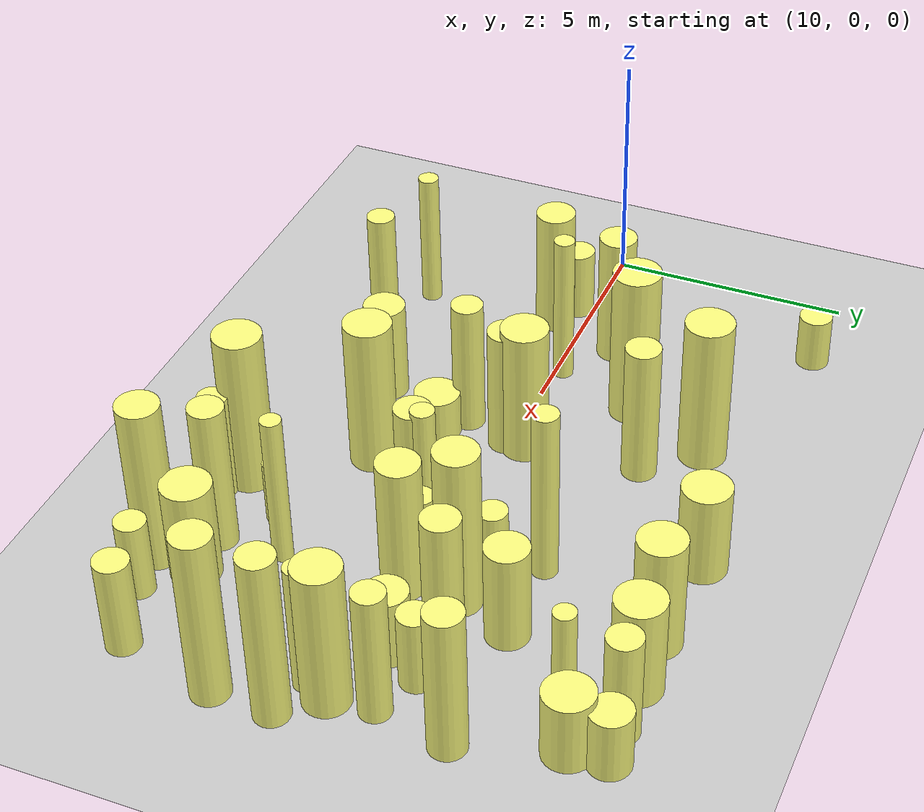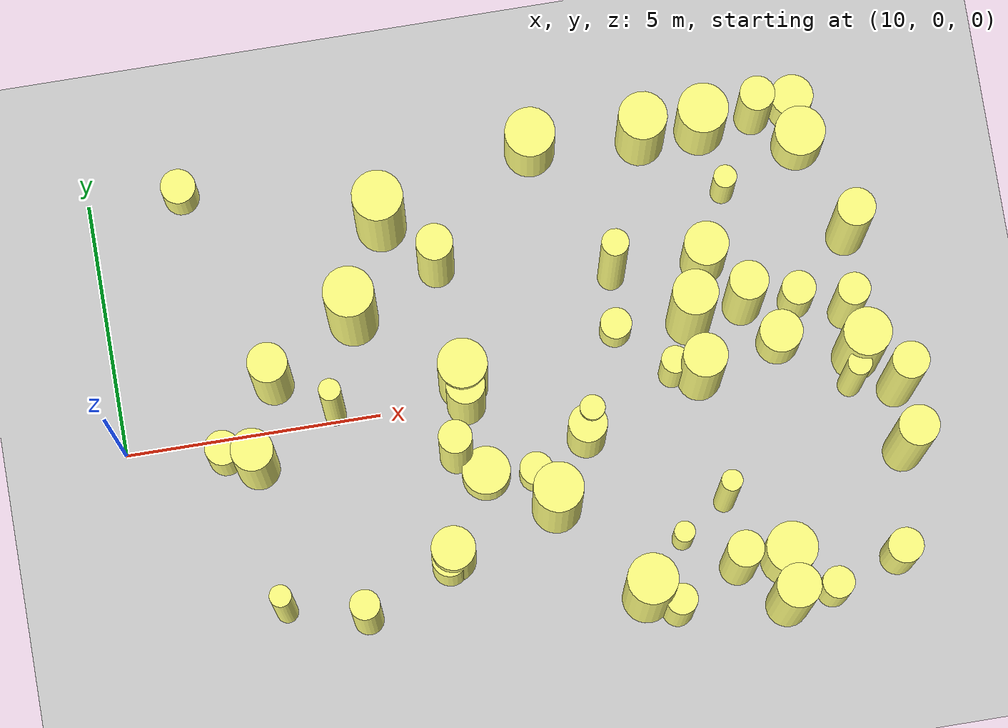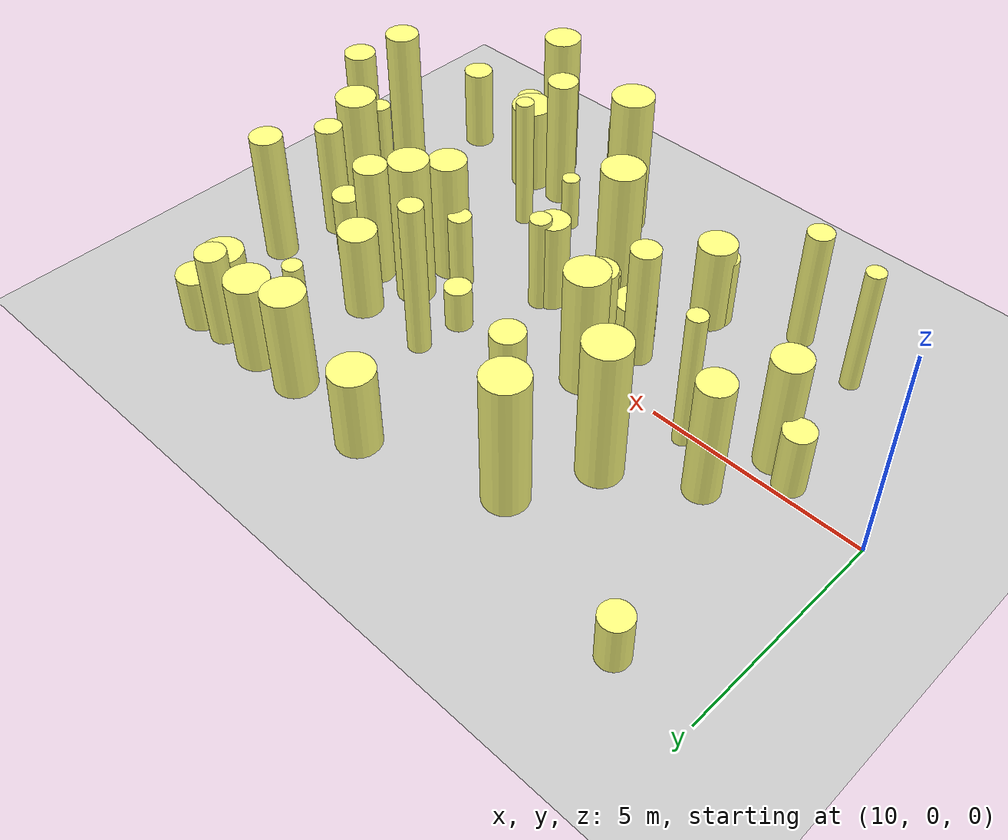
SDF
<sdf version="1.4">
 <world name="default">
  <include><uri>model://ground_plane</uri></include>
  <include><uri>model://sun</uri></include>
  <model name="forest">
   <static>true</static>
   <link name="cylinder0">
    <pose>11.826677985820567 4.899971942617954 0.5869042338431527 0 0 0</pose>
    <visual name="visual">
     <geometry>
      <cylinder><radius>0.34313009285876095</radius><length>1.1738084676863054</length></cylinder>
     </geometry>
     <material>
      <ambient>0.6 0.6 0.6 1</ambient>
      <diffuse>1 1 0.5 1</diffuse>
      <specular>0 0 0</specular>
      <emissive>0 0 0 1</emissive>
     </material>
    </visual>
    <collision name="collision">
     <geometry>
      <cylinder><radius>0.34313009285876095</radius><length>1.1738084676863054</length></cylinder>
     </geometry>
     <max_contacts>0</max_contacts>
    </collision>
   </link>
   <link name="cylinder1">
    <pose>11.915547671943166 -0.35116643810493464 0.7668834934920222 0 0 0</pose>
    <visual name="visual">
     <geometry>
      <cylinder><radius>0.3422690984058516</radius><length>1.5337669869840445</length></cylinder>
     </geometry>
     <material>
      <ambient>0.6 0.6 0.6 1</ambient>
      <diffuse>1 1 0.5 1</diffuse>
      <specular>0 0 0</specular>
      <emissive>0 0 0 1</emissive>
     </material>
    </visual>
    <collision name="collision">
     <geometry>
      <cylinder><radius>0.3422690984058516</radius><length>1.5337669869840445</length></cylinder>
     </geometry>
     <max_contacts>0</max_contacts>
    </collision>
   </link>
   <link name="cylinder2">
    <pose>16.85352270923643 -1.5199237046814162 0.4903164582564621 0 0 0</pose>
    <visual name="visual">
     <geometry>
      <cylinder><radius>0.4697104226124172</radius><length>0.9806329165129242</length></cylinder>
     </geometry>
     <material>
      <ambient>0.6 0.6 0.6 1</ambient>
      <diffuse>1 1 0.5 1</diffuse>
      <specular>0 0 0</specular>
      <emissive>0 0 0 1</emissive>
     </material>
    </visual>
    <collision name="collision">
     <geometry>
      <cylinder><radius>0.4697104226124172</radius><length>0.9806329165129242</length></cylinder>
     </geometry>
     <max_contacts>0</max_contacts>
    </collision>
   </link>
   <link name="cylinder4">
    <pose>15.882903146454112 -3.1812900634328556 0.8596063217194532 0 0 0</pose>
    <visual name="visual">
     <geometry>
      <cylinder><radius>0.34671603202420453</radius><length>1.7192126434389063</length></cylinder>
     </geometry>
     <material>
      <ambient>0.6 0.6 0.6 1</ambient>
      <diffuse>1 1 0.5 1</diffuse>
      <specular>0 0 0</specular>
      <emissive>0 0 0 1</emissive>
     </material>
    </visual>
    <collision name="collision">
     <geometry>
      <cylinder><radius>0.34671603202420453</radius><length>1.7192126434389063</length></cylinder>
     </geometry>
     <max_contacts>0</max_contacts>
    </collision>
   </link>
   <link name="cylinder10">
    <pose>21.23232838670821 0.8351597643573729 1.8041299638507438 0 0 0</pose>
    <visual name="visual">
     <geometry>
      <cylinder><radius>0.43971690417877474</radius><length>3.6082599277014875</length></cylinder>
     </geometry>
     <material>
      <ambient>0.6 0.6 0.6 1</ambient>
      <diffuse>1 1 0.5 1</diffuse>
      <specular>0 0 0</specular>
      <emissive>0 0 0 1</emissive>
     </material>
    </visual>
    <collision name="collision">
     <geometry>
      <cylinder><radius>0.43971690417877474</radius><length>3.6082599277014875</length></cylinder>
     </geometry>
     <max_contacts>0</max_contacts>
    </collision>
   </link>
   <link name="cylinder13">
    <pose>17.81148508534315 -1.6497905022994708 0.535257738188236 0 0 0</pose>
    <visual name="visual">
     <geometry>
      <cylinder><radius>0.3235462991837572</radius><length>1.070515476376472</length></cylinder>
     </geometry>
     <material>
      <ambient>0.6 0.6 0.6 1</ambient>
      <diffuse>1 1 0.5 1</diffuse>
      <specular>0 0 0</specular>
      <emissive>0 0 0 1</emissive>
     </material>
    </visual>
    <collision name="collision">
     <geometry>
      <cylinder><radius>0.3235462991837572</radius><length>1.070515476376472</length></cylinder>
     </geometry>
     <max_contacts>0</max_contacts>
    </collision>
   </link>
   <link name="cylinder15">
    <pose>16.54110975923666 2.6736107362665074 1.5243468116367418 0 0 0</pose>
    <visual name="visual">
     <geometry>
      <cylinder><radius>0.3569002195849709</radius><length>3.0486936232734836</length></cylinder>
     </geometry>
     <material>
      <ambient>0.6 0.6 0.6 1</ambient>
      <diffuse>1 1 0.5 1</diffuse>
      <specular>0 0 0</specular>
      <emissive>0 0 0 1</emissive>
     </material>
    </visual>
    <collision name="collision">
     <geometry>
      <cylinder><radius>0.3569002195849709</radius><length>3.0486936232734836</length></cylinder>
     </geometry>
     <max_contacts>0</max_contacts>
    </collision>
   </link>
   <link name="cylinder17">
    <pose>14.164843109316365 -3.9189205243046086 1.4657657977281235 0 0 0</pose>
    <visual name="visual">
     <geometry>
      <cylinder><radius>0.29147691392387615</radius><length>2.931531595456247</length></cylinder>
     </geometry>
     <material>
      <ambient>0.6 0.6 0.6 1</ambient>
      <diffuse>1 1 0.5 1</diffuse>
      <specular>0 0 0</specular>
      <emissive>0 0 0 1</emissive>
     </material>
    </visual>
    <collision name="collision">
     <geometry>
      <cylinder><radius>0.29147691392387615</radius><length>2.931531595456247</length></cylinder>
     </geometry>
     <max_contacts>0</max_contacts>
    </collision>
   </link>
   <link name="cylinder18">
    <pose>22.081934669884475 4.589553546037964 1.0865761649251073 0 0 0</pose>
    <visual name="visual">
     <geometry>
      <cylinder><radius>0.4905206526309489</radius><length>2.1731523298502147</length></cylinder>
     </geometry>
     <material>
      <ambient>0.6 0.6 0.6 1</ambient>
      <diffuse>1 1 0.5 1</diffuse>
      <specular>0 0 0</specular>
      <emissive>0 0 0 1</emissive>
     </material>
    </visual>
    <collision name="collision">
     <geometry>
      <cylinder><radius>0.4905206526309489</radius><length>2.1731523298502147</length></cylinder>
     </geometry>
     <max_contacts>0</max_contacts>
    </collision>
   </link>
   <link name="cylinder19">
    <pose>19.017382186992116 -0.8356951410971831 1.1742498988828127 0 0 0</pose>
    <visual name="visual">
     <geometry>
      <cylinder><radius>0.2438730452608467</radius><length>2.3484997977656255</length></cylinder>
     </geometry>
     <material>
      <ambient>0.6 0.6 0.6 1</ambient>
      <diffuse>1 1 0.5 1</diffuse>
      <specular>0 0 0</specular>
      <emissive>0 0 0 1</emissive>
     </material>
    </visual>
    <collision name="collision">
     <geometry>
      <cylinder><radius>0.2438730452608467</radius><length>2.3484997977656255</length></cylinder>
     </geometry>
     <max_contacts>0</max_contacts>
    </collision>
   </link>
   <link name="cylinder20">
    <pose>22.88792815418561 0.1683337289828266 0.7526996093904776 0 0 0</pose>
    <visual name="visual">
     <geometry>
      <cylinder><radius>0.4192804516614004</radius><length>1.5053992187809553</length></cylinder>
     </geometry>
     <material>
      <ambient>0.6 0.6 0.6 1</ambient>
      <diffuse>1 1 0.5 1</diffuse>
      <specular>0 0 0</specular>
      <emissive>0 0 0 1</emissive>
     </material>
    </visual>
    <collision name="collision">
     <geometry>
      <cylinder><radius>0.4192804516614004</radius><length>1.5053992187809553</length></cylinder>
     </geometry>
     <max_contacts>0</max_contacts>
    </collision>
   </link>
   <link name="cylinder21">
    <pose>23.351556238140013 0.9211427524844691 0.8247973887835952 0 0 0</pose>
    <visual name="visual">
     <geometry>
      <cylinder><radius>0.3324104645225271</radius><length>1.6495947775671904</length></cylinder>
     </geometry>
     <material>
      <ambient>0.6 0.6 0.6 1</ambient>
      <diffuse>1 1 0.5 1</diffuse>
      <specular>0 0 0</specular>
      <emissive>0 0 0 1</emissive>
     </material>
    </visual>
    <collision name="collision">
     <geometry>
      <cylinder><radius>0.3324104645225271</radius><length>1.6495947775671904</length></cylinder>
     </geometry>
     <max_contacts>0</max_contacts>
    </collision>
   </link>
   <link name="cylinder24">
    <pose>22.31656505410222 0.9966041452287433 1.5043619795012289 0 0 0</pose>
    <visual name="visual">
     <geometry>
      <cylinder><radius>0.37787404373720535</radius><length>3.0087239590024577</length></cylinder>
     </geometry>
     <material>
      <ambient>0.6 0.6 0.6 1</ambient>
      <diffuse>1 1 0.5 1</diffuse>
      <specular>0 0 0</specular>
      <emissive>0 0 0 1</emissive>
     </material>
    </visual>
    <collision name="collision">
     <geometry>
      <cylinder><radius>0.37787404373720535</radius><length>3.0087239590024577</length></cylinder>
     </geometry>
     <max_contacts>0</max_contacts>
    </collision>
   </link>
   <link name="cylinder25">
    <pose>19.55090622510535 -4.3614144590137185 1.7583003879640684 0 0 0</pose>
    <visual name="visual">
     <geometry>
      <cylinder><radius>0.4865441799256325</radius><length>3.516600775928137</length></cylinder>
     </geometry>
     <material>
      <ambient>0.6 0.6 0.6 1</ambient>
      <diffuse>1 1 0.5 1</diffuse>
      <specular>0 0 0</specular>
      <emissive>0 0 0 1</emissive>
     </material>
    </visual>
    <collision name="collision">
     <geometry>
      <cylinder><radius>0.4865441799256325</radius><length>3.516600775928137</length></cylinder>
     </geometry>
     <max_contacts>0</max_contacts>
    </collision>
   </link>
   <link name="cylinder28">
    <pose>23.146198933017466 4.679830741244247 1.1499842558241922 0 0 0</pose>
    <visual name="visual">
     <geometry>
      <cylinder><radius>0.3402844666596985</radius><length>2.2999685116483843</length></cylinder>
     </geometry>
     <material>
      <ambient>0.6 0.6 0.6 1</ambient>
      <diffuse>1 1 0.5 1</diffuse>
      <specular>0 0 0</specular>
      <emissive>0 0 0 1</emissive>
     </material>
    </visual>
    <collision name="collision">
     <geometry>
      <cylinder><radius>0.3402844666596985</radius><length>2.2999685116483843</length></cylinder>
     </geometry>
     <max_contacts>0</max_contacts>
    </collision>
   </link>
   <link name="cylinder30">
    <pose>19.890360612082304 1.9825380708927103 1.8899275905680515 0 0 0</pose>
    <visual name="visual">
     <geometry>
      <cylinder><radius>0.2615858982009419</radius><length>3.779855181136103</length></cylinder>
     </geometry>
     <material>
      <ambient>0.6 0.6 0.6 1</ambient>
      <diffuse>1 1 0.5 1</diffuse>
      <specular>0 0 0</specular>
      <emissive>0 0 0 1</emissive>
     </material>
    </visual>
    <collision name="collision">
     <geometry>
      <cylinder><radius>0.2615858982009419</radius><length>3.779855181136103</length></cylinder>
     </geometry>
     <max_contacts>0</max_contacts>
    </collision>
   </link>
   <link name="cylinder31">
    <pose>24.54866488244153 2.030646643357871 1.5939948637435892 0 0 0</pose>
    <visual name="visual">
     <geometry>
      <cylinder><radius>0.3694740997385906</radius><length>3.1879897274871785</length></cylinder>
     </geometry>
     <material>
      <ambient>0.6 0.6 0.6 1</ambient>
      <diffuse>1 1 0.5 1</diffuse>
      <specular>0 0 0</specular>
      <emissive>0 0 0 1</emissive>
     </material>
    </visual>
    <collision name="collision">
     <geometry>
      <cylinder><radius>0.3694740997385906</radius><length>3.1879897274871785</length></cylinder>
     </geometry>
     <max_contacts>0</max_contacts>
    </collision>
   </link>
   <link name="cylinder32">
    <pose>14.145014531035635 0.15088157779923872 1.6697930069987197 0 0 0</pose>
    <visual name="visual">
     <geometry>
      <cylinder><radius>0.21219663849185866</radius><length>3.3395860139974394</length></cylinder>
     </geometry>
     <material>
      <ambient>0.6 0.6 0.6 1</ambient>
      <diffuse>1 1 0.5 1</diffuse>
      <specular>0 0 0</specular>
      <emissive>0 0 0 1</emissive>
     </material>
    </visual>
    <collision name="collision">
     <geometry>
      <cylinder><radius>0.21219663849185866</radius><length>3.3395860139974394</length></cylinder>
     </geometry>
     <max_contacts>0</max_contacts>
    </collision>
   </link>
   <link name="cylinder35">
    <pose>18.1018515098012 -2.358989871626643 1.6671822992722356 0 0 0</pose>
    <visual name="visual">
     <geometry>
      <cylinder><radius>0.4823512788014799</radius><length>3.334364598544471</length></cylinder>
     </geometry>
     <material>
      <ambient>0.6 0.6 0.6 1</ambient>
      <diffuse>1 1 0.5 1</diffuse>
      <specular>0 0 0</specular>
      <emissive>0 0 0 1</emissive>
     </material>
    </visual>
    <collision name="collision">
     <geometry>
      <cylinder><radius>0.4823512788014799</radius><length>3.334364598544471</length></cylinder>
     </geometry>
     <max_contacts>0</max_contacts>
    </collision>
   </link>
   <link name="cylinder37">
    <pose>23.126579535795926 -4.808531130241135 0.8421003473515796 0 0 0</pose>
    <visual name="visual">
     <geometry>
      <cylinder><radius>0.31169881950522427</radius><length>1.6842006947031591</length></cylinder>
     </geometry>
     <material>
      <ambient>0.6 0.6 0.6 1</ambient>
      <diffuse>1 1 0.5 1</diffuse>
      <specular>0 0 0</specular>
      <emissive>0 0 0 1</emissive>
     </material>
    </visual>
    <collision name="collision">
     <geometry>
      <cylinder><radius>0.31169881950522427</radius><length>1.6842006947031591</length></cylinder>
     </geometry>
     <max_contacts>0</max_contacts>
    </collision>
   </link>
   <link name="cylinder38">
    <pose>22.210281383809615 -4.933315609613817 1.826320196705377 0 0 0</pose>
    <visual name="visual">
     <geometry><cylinder><radius>0.423259821530241</radius><length>3.652640393410754</length></cylinder></geometry>
     <material>
      <ambient>0.6 0.6 0.6 1</ambient>
      <diffuse>1 1 0.5 1</diffuse>
      <specular>0 0 0</specular>
      <emissive>0 0 0 1</emissive>
     </material>
    </visual>
    <collision name="collision">
     <geometry><cylinder><radius>0.423259821530241</radius><length>3.652640393410754</length></cylinder></geometry>
     <max_contacts>0</max_contacts>
    </collision>
   </link>
   <link name="cylinder40">
    <pose>20.753949416310192 -0.10957031323516109 0.9394621256935985 0 0 0</pose>
    <visual name="visual">
     <geometry>
      <cylinder><radius>0.26863239323546817</radius><length>1.878924251387197</length></cylinder>
     </geometry>
     <material>
      <ambient>0.6 0.6 0.6 1</ambient>
      <diffuse>1 1 0.5 1</diffuse>
      <specular>0 0 0</specular>
      <emissive>0 0 0 1</emissive>
     </material>
    </visual>
    <collision name="collision">
     <geometry>
      <cylinder><radius>0.26863239323546817</radius><length>1.878924251387197</length></cylinder>
     </geometry>
     <max_contacts>0</max_contacts>
    </collision>
   </link>
   <link name="cylinder41">
    <pose>13.053319407883997 0.9175047944221646 1.4601352081956382 0 0 0</pose>
    <visual name="visual">
     <geometry>
      <cylinder><radius>0.3889727540429673</radius><length>2.9202704163912765</length></cylinder>
     </geometry>
     <material>
      <ambient>0.6 0.6 0.6 1</ambient>
      <diffuse>1 1 0.5 1</diffuse>
      <specular>0 0 0</specular>
      <emissive>0 0 0 1</emissive>
     </material>
    </visual>
    <collision name="collision">
     <geometry>
      <cylinder><radius>0.3889727540429673</radius><length>2.9202704163912765</length></cylinder>
     </geometry>
     <max_contacts>0</max_contacts>
    </collision>
   </link>
   <link name="cylinder42">
    <pose>21.37751205461204 -4.05521436788613 1.6159200462265029 0 0 0</pose>
    <visual name="visual">
     <geometry>
      <cylinder><radius>0.3512687478570553</radius><length>3.2318400924530057</length></cylinder>
     </geometry>
     <material>
      <ambient>0.6 0.6 0.6 1</ambient>
      <diffuse>1 1 0.5 1</diffuse>
      <specular>0 0 0</specular>
      <emissive>0 0 0 1</emissive>
     </material>
    </visual>
    <collision name="collision">
     <geometry>
      <cylinder><radius>0.3512687478570553</radius><length>3.2318400924530057</length></cylinder>
     </geometry>
     <max_contacts>0</max_contacts>
    </collision>
   </link>
   <link name="cylinder45">
    <pose>16.693918618681884 -0.07840284378698215 1.3955045873859342 0 0 0</pose>
    <visual name="visual">
     <geometry>
      <cylinder><radius>0.37877313525698275</radius><length>2.7910091747718684</length></cylinder>
     </geometry>
     <material>
      <ambient>0.6 0.6 0.6 1</ambient>
      <diffuse>1 1 0.5 1</diffuse>
      <specular>0 0 0</specular>
      <emissive>0 0 0 1</emissive>
     </material>
    </visual>
    <collision name="collision">
     <geometry>
      <cylinder><radius>0.37877313525698275</radius><length>2.7910091747718684</length></cylinder>
     </geometry>
     <max_contacts>0</max_contacts>
    </collision>
   </link>
   <link name="cylinder47">
    <pose>24.475181988496644 -4.354331795640624 1.020487259942327 0 0 0</pose>
    <visual name="visual">
     <geometry>
      <cylinder><radius>0.3433122116981998</radius><length>2.040974519884654</length></cylinder>
     </geometry>
     <material>
      <ambient>0.6 0.6 0.6 1</ambient>
      <diffuse>1 1 0.5 1</diffuse>
      <specular>0 0 0</specular>
      <emissive>0 0 0 1</emissive>
     </material>
    </visual>
    <collision name="collision">
     <geometry>
      <cylinder><radius>0.3433122116981998</radius><length>2.040974519884654</length></cylinder>
     </geometry>
     <max_contacts>0</max_contacts>
    </collision>
   </link>
   <link name="cylinder49">
    <pose>24.99297741693657 -1.1004772562330256 1.8646785672179182 0 0 0</pose>
    <visual name="visual">
     <geometry>
      <cylinder><radius>0.35521813960646176</radius><length>3.7293571344358365</length></cylinder>
     </geometry>
     <material>
      <ambient>0.6 0.6 0.6 1</ambient>
      <diffuse>1 1 0.5 1</diffuse>
      <specular>0 0 0</specular>
      <emissive>0 0 0 1</emissive>
     </material>
    </visual>
    <collision name="collision">
     <geometry>
      <cylinder><radius>0.35521813960646176</radius><length>3.7293571344358365</length></cylinder>
     </geometry>
     <max_contacts>0</max_contacts>
    </collision>
   </link>
   <link name="cylinder54">
    <pose>19.792208910895667 0.8966879309655678 0.526436509992778 0 0 0</pose>
    <visual name="visual">
     <geometry>
      <cylinder><radius>0.3081490781120602</radius><length>1.052873019985556</length></cylinder>
     </geometry>
     <material>
      <ambient>0.6 0.6 0.6 1</ambient>
      <diffuse>1 1 0.5 1</diffuse>
      <specular>0 0 0</specular>
      <emissive>0 0 0 1</emissive>
     </material>
    </visual>
    <collision name="collision">
     <geometry>
      <cylinder><radius>0.3081490781120602</radius><length>1.052873019985556</length></cylinder>
     </geometry>
     <max_contacts>0</max_contacts>
    </collision>
   </link>
   <link name="cylinder63">
    <pose>15.980131105394442 -3.0378865372422847 1.065293908268392 0 0 0</pose>
    <visual name="visual">
     <geometry>
      <cylinder><radius>0.4286404402341757</radius><length>2.130587816536784</length></cylinder>
     </geometry>
     <material>
      <ambient>0.6 0.6 0.6 1</ambient>
      <diffuse>1 1 0.5 1</diffuse>
      <specular>0 0 0</specular>
      <emissive>0 0 0 1</emissive>
     </material>
    </visual>
    <collision name="collision">
     <geometry>
      <cylinder><radius>0.4286404402341757</radius><length>2.130587816536784</length></cylinder>
     </geometry>
     <max_contacts>0</max_contacts>
    </collision>
   </link>
   <link name="cylinder64">
    <pose>14.781978013541071 1.9198808485765841 1.723969995079173 0 0 0</pose>
    <visual name="visual">
     <geometry>
      <cylinder><radius>0.4916619554612384</radius><length>3.447939990158346</length></cylinder>
     </geometry>
     <material>
      <ambient>0.6 0.6 0.6 1</ambient>
      <diffuse>1 1 0.5 1</diffuse>
      <specular>0 0 0</specular>
      <emissive>0 0 0 1</emissive>
     </material>
    </visual>
    <collision name="collision">
     <geometry>
      <cylinder><radius>0.4916619554612384</radius><length>3.447939990158346</length></cylinder>
     </geometry>
     <max_contacts>0</max_contacts>
    </collision>
   </link>
   <link name="cylinder65">
    <pose>21.26319648621795 -0.28741031946721307 1.5076799240455494 0 0 0</pose>
    <visual name="visual">
     <geometry>
      <cylinder><radius>0.42762659130810665</radius><length>3.015359848091099</length></cylinder>
     </geometry>
     <material>
      <ambient>0.6 0.6 0.6 1</ambient>
      <diffuse>1 1 0.5 1</diffuse>
      <specular>0 0 0</specular>
      <emissive>0 0 0 1</emissive>
     </material>
    </visual>
    <collision name="collision">
     <geometry>
      <cylinder><radius>0.42762659130810665</radius><length>3.015359848091099</length></cylinder>
     </geometry>
     <max_contacts>0</max_contacts>
    </collision>
   </link>
   <link name="cylinder66">
    <pose>21.333717633489854 -2.7513296253308006 1.646005594364954 0 0 0</pose>
    <visual name="visual">
     <geometry><cylinder><radius>0.204460340742221</radius><length>3.292011188729908</length></cylinder></geometry>
     <material>
      <ambient>0.6 0.6 0.6 1</ambient>
      <diffuse>1 1 0.5 1</diffuse>
      <specular>0 0 0</specular>
      <emissive>0 0 0 1</emissive>
     </material>
    </visual>
    <collision name="collision">
     <geometry><cylinder><radius>0.204460340742221</radius><length>3.292011188729908</length></cylinder></geometry>
     <max_contacts>0</max_contacts>
    </collision>
   </link>
   <link name="cylinder68">
    <pose>24.13885682083537 -0.8724692694396374 1.4008079089924594 0 0 0</pose>
    <visual name="visual">
     <geometry>
      <cylinder><radius>0.23481344573163077</radius><length>2.801615817984919</length></cylinder>
     </geometry>
     <material>
      <ambient>0.6 0.6 0.6 1</ambient>
      <diffuse>1 1 0.5 1</diffuse>
      <specular>0 0 0</specular>
      <emissive>0 0 0 1</emissive>
     </material>
    </visual>
    <collision name="collision">
     <geometry>
      <cylinder><radius>0.23481344573163077</radius><length>2.801615817984919</length></cylinder>
     </geometry>
     <max_contacts>0</max_contacts>
    </collision>
   </link>
   <link name="cylinder74">
    <pose>24.346263286740644 -0.35804655728902546 1.5914413942277874 0 0 0</pose>
    <visual name="visual">
     <geometry>
      <cylinder><radius>0.46372761902924553</radius><length>3.182882788455575</length></cylinder>
     </geometry>
     <material>
      <ambient>0.6 0.6 0.6 1</ambient>
      <diffuse>1 1 0.5 1</diffuse>
      <specular>0 0 0</specular>
      <emissive>0 0 0 1</emissive>
     </material>
    </visual>
    <collision name="collision">
     <geometry>
      <cylinder><radius>0.46372761902924553</radius><length>3.182882788455575</length></cylinder>
     </geometry>
     <max_contacts>0</max_contacts>
    </collision>
   </link>
   <link name="cylinder78">
    <pose>24.27269485479853 0.5414324373689796 1.4240297944617435 0 0 0</pose>
    <visual name="visual">
     <geometry>
      <cylinder><radius>0.3147185051359856</radius><length>2.848059588923487</length></cylinder>
     </geometry>
     <material>
      <ambient>0.6 0.6 0.6 1</ambient>
      <diffuse>1 1 0.5 1</diffuse>
      <specular>0 0 0</specular>
      <emissive>0 0 0 1</emissive>
     </material>
    </visual>
    <collision name="collision">
     <geometry>
      <cylinder><radius>0.3147185051359856</radius><length>2.848059588923487</length></cylinder>
     </geometry>
     <max_contacts>0</max_contacts>
    </collision>
   </link>
   <link name="cylinder91">
    <pose>20.4115576807584 -3.349840157138424 0.6803124684972958 0 0 0</pose>
    <visual name="visual">
     <geometry>
      <cylinder><radius>0.2052854844332816</radius><length>1.3606249369945915</length></cylinder>
     </geometry>
     <material>
      <ambient>0.6 0.6 0.6 1</ambient>
      <diffuse>1 1 0.5 1</diffuse>
      <specular>0 0 0</specular>
      <emissive>0 0 0 1</emissive>
     </material>
    </visual>
    <collision name="collision">
     <geometry>
      <cylinder><radius>0.2052854844332816</radius><length>1.3606249369945915</length></cylinder>
     </geometry>
     <max_contacts>0</max_contacts>
    </collision>
   </link>
   <link name="cylinder92">
    <pose>16.69808809938617 0.30592243105295225 1.4851822058643225 0 0 0</pose>
    <visual name="visual">
     <geometry>
      <cylinder><radius>0.48081551089007263</radius><length>2.970364411728645</length></cylinder>
     </geometry>
     <material>
      <ambient>0.6 0.6 0.6 1</ambient>
      <diffuse>1 1 0.5 1</diffuse>
      <specular>0 0 0</specular>
      <emissive>0 0 0 1</emissive>
     </material>
    </visual>
    <collision name="collision">
     <geometry>
      <cylinder><radius>0.48081551089007263</radius><length>2.970364411728645</length></cylinder>
     </geometry>
     <max_contacts>0</max_contacts>
    </collision>
   </link>
   <link name="cylinder94">
    <pose>22.32654698202159 -4.055476520301058 1.0829128033080635 0 0 0</pose>
    <visual name="visual">
     <geometry><cylinder><radius>0.496562963406808</radius><length>2.165825606616127</length></cylinder></geometry>
     <material>
      <ambient>0.6 0.6 0.6 1</ambient>
      <diffuse>1 1 0.5 1</diffuse>
      <specular>0 0 0</specular>
      <emissive>0 0 0 1</emissive>
     </material>
    </visual>
    <collision name="collision">
     <geometry><cylinder><radius>0.496562963406808</radius><length>2.165825606616127</length></cylinder></geometry>
     <max_contacts>0</max_contacts>
    </collision>
   </link>
   <link name="cylinder98">
    <pose>15.60915755669945 3.6845494284752416 1.640896129262108 0 0 0</pose>
    <visual name="visual">
     <geometry>
      <cylinder><radius>0.4916589946091796</radius><length>3.281792258524216</length></cylinder>
     </geometry>
     <material>
      <ambient>0.6 0.6 0.6 1</ambient>
      <diffuse>1 1 0.5 1</diffuse>
      <specular>0 0 0</specular>
      <emissive>0 0 0 1</emissive>
     </material>
    </visual>
    <collision name="collision">
     <geometry>
      <cylinder><radius>0.4916589946091796</radius><length>3.281792258524216</length></cylinder>
     </geometry>
     <max_contacts>0</max_contacts>
    </collision>
   </link>
   <link name="cylinder100">
    <pose>16.34365468470439 -1.0495467405575098 1.4602373336654437 0 0 0</pose>
    <visual name="visual">
     <geometry>
      <cylinder><radius>0.32472873480166475</radius><length>2.9204746673308875</length></cylinder>
     </geometry>
     <material>
      <ambient>0.6 0.6 0.6 1</ambient>
      <diffuse>1 1 0.5 1</diffuse>
      <specular>0 0 0</specular>
      <emissive>0 0 0 1</emissive>
     </material>
    </visual>
    <collision name="collision">
     <geometry>
      <cylinder><radius>0.32472873480166475</radius><length>2.9204746673308875</length></cylinder>
     </geometry>
     <max_contacts>0</max_contacts>
    </collision>
   </link>
   <link name="cylinder103">
    <pose>24.9309216675733 -2.3397735632766805 1.862404700492726 0 0 0</pose>
    <visual name="visual">
     <geometry>
      <cylinder><radius>0.38849605529701847</radius><length>3.724809400985452</length></cylinder>
     </geometry>
     <material>
      <ambient>0.6 0.6 0.6 1</ambient>
      <diffuse>1 1 0.5 1</diffuse>
      <specular>0 0 0</specular>
      <emissive>0 0 0 1</emissive>
     </material>
    </visual>
    <collision name="collision">
     <geometry>
      <cylinder><radius>0.38849605529701847</radius><length>3.724809400985452</length></cylinder>
     </geometry>
     <max_contacts>0</max_contacts>
    </collision>
   </link>
   <link name="cylinder105">
    <pose>23.917399691484754 3.9865838659509834 0.7415054742868887 0 0 0</pose>
    <visual name="visual">
     <geometry>
      <cylinder><radius>0.491716424776479</radius><length>1.4830109485737775</length></cylinder>
     </geometry>
     <material>
      <ambient>0.6 0.6 0.6 1</ambient>
      <diffuse>1 1 0.5 1</diffuse>
      <specular>0 0 0</specular>
      <emissive>0 0 0 1</emissive>
     </material>
    </visual>
    <collision name="collision">
     <geometry>
      <cylinder><radius>0.491716424776479</radius><length>1.4830109485737775</length></cylinder>
     </geometry>
     <max_contacts>0</max_contacts>
    </collision>
   </link>
   <link name="cylinder109">
    <pose>23.896079965201174 4.7309487857315755 0.6597231236496904 0 0 0</pose>
    <visual name="visual">
     <geometry>
      <cylinder><radius>0.4131045484246886</radius><length>1.3194462472993809</length></cylinder>
     </geometry>
     <material>
      <ambient>0.6 0.6 0.6 1</ambient>
      <diffuse>1 1 0.5 1</diffuse>
      <specular>0 0 0</specular>
      <emissive>0 0 0 1</emissive>
     </material>
    </visual>
    <collision name="collision">
     <geometry>
      <cylinder><radius>0.4131045484246886</radius><length>1.3194462472993809</length></cylinder>
     </geometry>
     <max_contacts>0</max_contacts>
    </collision>
   </link>
   <link name="cylinder110">
    <pose>18.71679267977275 4.697418209096252 0.9973849384592035 0 0 0</pose>
    <visual name="visual">
     <geometry>
      <cylinder><radius>0.49065512537990597</radius><length>1.994769876918407</length></cylinder>
     </geometry>
     <material>
      <ambient>0.6 0.6 0.6 1</ambient>
      <diffuse>1 1 0.5 1</diffuse>
      <specular>0 0 0</specular>
      <emissive>0 0 0 1</emissive>
     </material>
    </visual>
    <collision name="collision">
     <geometry>
      <cylinder><radius>0.49065512537990597</radius><length>1.994769876918407</length></cylinder>
     </geometry>
     <max_contacts>0</max_contacts>
    </collision>
   </link>
   <link name="cylinder112">
    <pose>20.094528268549887 -4.708309503669021 1.1632303669020823 0 0 0</pose>
    <visual name="visual">
     <geometry>
      <cylinder><radius>0.3025060279728032</radius><length>2.3264607338041645</length></cylinder>
     </geometry>
     <material>
      <ambient>0.6 0.6 0.6 1</ambient>
      <diffuse>1 1 0.5 1</diffuse>
      <specular>0 0 0</specular>
      <emissive>0 0 0 1</emissive>
     </material>
    </visual>
    <collision name="collision">
     <geometry>
      <cylinder><radius>0.3025060279728032</radius><length>2.3264607338041645</length></cylinder>
     </geometry>
     <max_contacts>0</max_contacts>
    </collision>
   </link>
   <link name="cylinder113">
    <pose>18.89120194199689 -1.1015643379578566 1.1138832486618526 0 0 0</pose>
    <visual name="visual">
     <geometry>
      <cylinder><radius>0.37532983630414707</radius><length>2.2277664973237052</length></cylinder>
     </geometry>
     <material>
      <ambient>0.6 0.6 0.6 1</ambient>
      <diffuse>1 1 0.5 1</diffuse>
      <specular>0 0 0</specular>
      <emissive>0 0 0 1</emissive>
     </material>
    </visual>
    <collision name="collision">
     <geometry>
      <cylinder><radius>0.37532983630414707</radius><length>2.2277664973237052</length></cylinder>
     </geometry>
     <max_contacts>0</max_contacts>
    </collision>
   </link>
   <link name="cylinder117">
    <pose>12.511745781415243 -0.6600846626212764 1.397691252630168 0 0 0</pose>
    <visual name="visual">
     <geometry>
      <cylinder><radius>0.4124028469886366</radius><length>2.795382505260336</length></cylinder>
     </geometry>
     <material>
      <ambient>0.6 0.6 0.6 1</ambient>
      <diffuse>1 1 0.5 1</diffuse>
      <specular>0 0 0</specular>
      <emissive>0 0 0 1</emissive>
     </material>
    </visual>
    <collision name="collision">
     <geometry>
      <cylinder><radius>0.4124028469886366</radius><length>2.795382505260336</length></cylinder>
     </geometry>
     <max_contacts>0</max_contacts>
    </collision>
   </link>
   <link name="cylinder121">
    <pose>20.88631579927071 4.555106980691617 1.260962058582504 0 0 0</pose>
    <visual name="visual">
     <geometry>
      <cylinder><radius>0.4733322232822575</radius><length>2.521924117165008</length></cylinder>
     </geometry>
     <material>
      <ambient>0.6 0.6 0.6 1</ambient>
      <diffuse>1 1 0.5 1</diffuse>
      <specular>0 0 0</specular>
      <emissive>0 0 0 1</emissive>
     </material>
    </visual>
    <collision name="collision">
     <geometry>
      <cylinder><radius>0.4733322232822575</radius><length>2.521924117165008</length></cylinder>
     </geometry>
     <max_contacts>0</max_contacts>
    </collision>
   </link>
   <link name="cylinder124">
    <pose>21.70237451305269 1.9745920702991988 1.0722982930719027 0 0 0</pose>
    <visual name="visual">
     <geometry>
      <cylinder><radius>0.4325800308634844</radius><length>2.1445965861438054</length></cylinder>
     </geometry>
     <material>
      <ambient>0.6 0.6 0.6 1</ambient>
      <diffuse>1 1 0.5 1</diffuse>
      <specular>0 0 0</specular>
      <emissive>0 0 0 1</emissive>
     </material>
    </visual>
    <collision name="collision">
     <geometry>
      <cylinder><radius>0.4325800308634844</radius><length>2.1445965861438054</length></cylinder>
     </geometry>
     <max_contacts>0</max_contacts>
    </collision>
   </link>
   <link name="cylinder131">
    <pose>22.318886706116487 3.303295532806665 0.806679429341196 0 0 0</pose>
    <visual name="visual">
     <geometry>
      <cylinder><radius>0.22588288804948112</radius><length>1.613358858682392</length></cylinder>
     </geometry>
     <material>
      <ambient>0.6 0.6 0.6 1</ambient>
      <diffuse>1 1 0.5 1</diffuse>
      <specular>0 0 0</specular>
      <emissive>0 0 0 1</emissive>
     </material>
    </visual>
    <collision name="collision">
     <geometry>
      <cylinder><radius>0.22588288804948112</radius><length>1.613358858682392</length></cylinder>
     </geometry>
     <max_contacts>0</max_contacts>
    </collision>
   </link>
   <link name="cylinder139">
    <pose>12.62968339846779 -3.5134878290297733 1.5215472042640452 0 0 0</pose>
    <visual name="visual">
     <geometry>
      <cylinder><radius>0.2127514575365757</radius><length>3.0430944085280904</length></cylinder>
     </geometry>
     <material>
      <ambient>0.6 0.6 0.6 1</ambient>
      <diffuse>1 1 0.5 1</diffuse>
      <specular>0 0 0</specular>
      <emissive>0 0 0 1</emissive>
     </material>
    </visual>
    <collision name="collision">
     <geometry>
      <cylinder><radius>0.2127514575365757</radius><length>3.0430944085280904</length></cylinder>
     </geometry>
     <max_contacts>0</max_contacts>
    </collision>
   </link>
  </model>
 </world>
</sdf>
